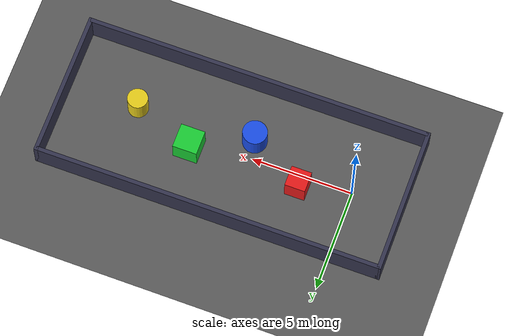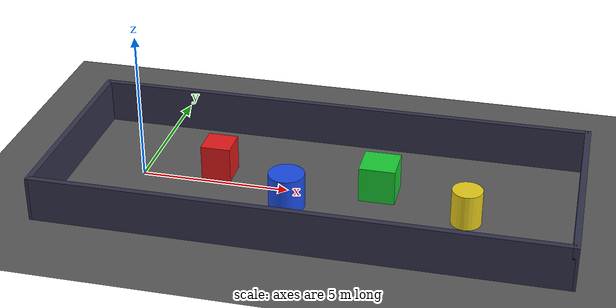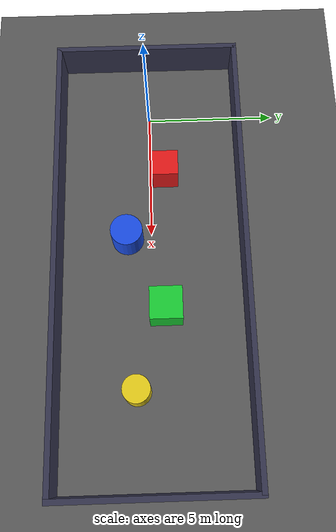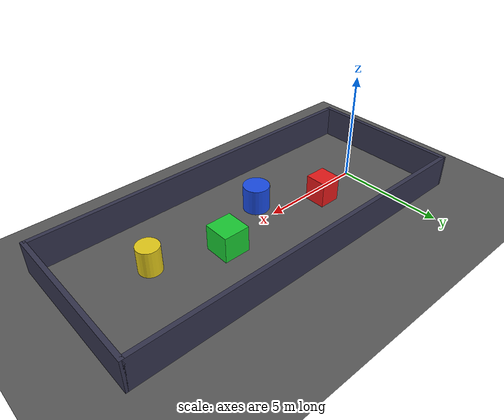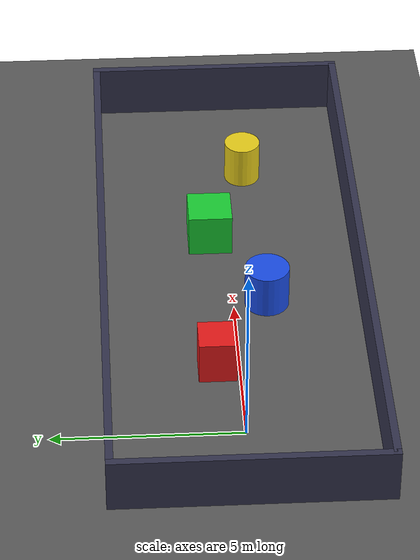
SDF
<?xml version="1.0" ?>
<sdf version="1.6">
  <world name="obstacle_course">
    <!-- Physics parameters -->
    <physics name="1ms" type="ignored">
      <max_step_size>0.001</max_step_size>
      <real_time_factor>1.0</real_time_factor>
    </physics>

    <!-- Essential Gazebo Plugins -->
    <plugin filename="gz-sim-physics-system" name="gz::sim::systems::Physics"></plugin>
    <plugin filename="gz-sim-scene-broadcaster-system" name="gz::sim::systems::SceneBroadcaster"></plugin>
    <plugin filename="gz-sim-user-commands-system" name="gz::sim::systems::UserCommands"></plugin>
    <plugin filename="gz-sim-sensors-system" name="gz::sim::systems::Sensors">
      <render_engine>ogre2</render_engine>
    </plugin>

    <!-- Environment Lighting & Sky -->
    <scene>
      <ambient>0.6 0.6 0.6 1</ambient>
      <background>0.6 0.8 1.0 1</background>
      <shadows>true</shadows>
    </scene>

    <light type="directional" name="sun">
      <cast_shadows>true</cast_shadows>
      <pose>0 0 15 0 0 0</pose>
      <diffuse>0.9 0.9 0.9 1</diffuse>
      <specular>0.3 0.3 0.3 1</specular>
      <direction>-0.5 0.2 -0.8</direction>
    </light>

    <!-- Ground Plane -->
    <model name="ground_plane">
      <static>true</static>
      <link name="link">
        <collision name="collision">
          <geometry>
            <plane>
              <normal>0 0 1</normal>
              <size>100 100</size>
            </plane>
          </geometry>
        </collision>
        <visual name="visual">
          <geometry>
            <plane>
              <normal>0 0 1</normal>
              <size>100 100</size>
            </plane>
          </geometry>
          <material>
            <ambient>0.35 0.35 0.35 1</ambient>
            <diffuse>0.35 0.35 0.35 1</diffuse>
            <specular>0.1 0.1 0.1 1</specular>
          </material>
        </visual>
      </link>
    </model>

    <!-- ==================== ARENA BOUNDARY WALLS ==================== -->
    <model name="north_wall">
      <static>true</static>
      <pose>6.0 3.5 0.75 0 0 0</pose>
      <link name="link">
        <collision name="col"><geometry><box><size>17.0 0.2 1.5</size></box></geometry></collision>
        <visual name="vis">
          <geometry><box><size>17.0 0.2 1.5</size></box></geometry>
          <material><ambient>0.2 0.2 0.3 1</ambient><diffuse>0.2 0.2 0.3 1</diffuse></material>
        </visual>
      </link>
    </model>

    <model name="south_wall">
      <static>true</static>
      <pose>6.0 -3.5 0.75 0 0 0</pose>
      <link name="link">
        <collision name="col"><geometry><box><size>17.0 0.2 1.5</size></box></geometry></collision>
        <visual name="vis">
          <geometry><box><size>17.0 0.2 1.5</size></box></geometry>
          <material><ambient>0.2 0.2 0.3 1</ambient><diffuse>0.2 0.2 0.3 1</diffuse></material>
        </visual>
      </link>
    </model>

    <model name="east_wall">
      <static>true</static>
      <pose>14.5 0.0 0.75 0 0 0</pose>
      <link name="link">
        <collision name="col"><geometry><box><size>0.2 7.2 1.5</size></box></geometry></collision>
        <visual name="vis">
          <geometry><box><size>0.2 7.2 1.5</size></box></geometry>
          <material><ambient>0.2 0.2 0.3 1</ambient><diffuse>0.2 0.2 0.3 1</diffuse></material>
        </visual>
      </link>
    </model>

    <model name="west_wall">
      <static>true</static>
      <pose>-2.5 0.0 0.75 0 0 0</pose>
      <link name="link">
        <collision name="col"><geometry><box><size>0.2 7.2 1.5</size></box></geometry></collision>
        <visual name="vis">
          <geometry><box><size>0.2 7.2 1.5</size></box></geometry>
          <material><ambient>0.2 0.2 0.3 1</ambient><diffuse>0.2 0.2 0.3 1</diffuse></material>
        </visual>
      </link>
    </model>

    <!-- ==================== DEMO OBSTACLES ==================== -->
    <!-- Obstacle 1: Red Box on the Left (forces robot to steer right) -->
    <model name="obstacle_red_box">
      <static>true</static>
      <pose>2.5 0.6 0.6 0 0 0</pose>
      <link name="link">
        <collision name="col"><geometry><box><size>1.0 1.0 1.2</size></box></geometry></collision>
        <visual name="vis">
          <geometry><box><size>1.0 1.0 1.2</size></box></geometry>
          <material>
            <ambient>0.9 0.1 0.1 1</ambient>
            <diffuse>0.9 0.1 0.1 1</diffuse>
            <specular>0.5 0.5 0.5 1</specular>
          </material>
        </visual>
      </link>
    </model>

    <!-- Obstacle 2: Blue Cylinder on the Right (forces robot to steer left) -->
    <model name="obstacle_blue_cylinder">
      <static>true</static>
      <pose>5.2 -0.9 0.6 0 0 0</pose>
      <link name="link">
        <collision name="col"><geometry><cylinder><radius>0.6</radius><length>1.2</length></cylinder></geometry></collision>
        <visual name="vis">
          <geometry><cylinder><radius>0.6</radius><length>1.2</length></cylinder></geometry>
          <material>
            <ambient>0.1 0.3 0.9 1</ambient>
            <diffuse>0.1 0.3 0.9 1</diffuse>
            <specular>0.5 0.5 0.5 1</specular>
          </material>
        </visual>
      </link>
    </model>

    <!-- Obstacle 3: Green Box in Center-Left -->
    <model name="obstacle_green_box">
      <static>true</static>
      <pose>8.0 0.5 0.6 0 0 0</pose>
      <link name="link">
        <collision name="col"><geometry><box><size>1.2 1.2 1.2</size></box></geometry></collision>
        <visual name="vis">
          <geometry><box><size>1.2 1.2 1.2</size></box></geometry>
          <material>
            <ambient>0.1 0.8 0.2 1</ambient>
            <diffuse>0.1 0.8 0.2 1</diffuse>
            <specular>0.5 0.5 0.5 1</specular>
          </material>
        </visual>
      </link>
    </model>

    <!-- Obstacle 4: Yellow Pillar on the Right -->
    <model name="obstacle_yellow_pillar">
      <static>true</static>
      <pose>11.0 -0.6 0.6 0 0 0</pose>
      <link name="link">
        <collision name="col"><geometry><cylinder><radius>0.5</radius><length>1.2</length></cylinder></geometry></collision>
        <visual name="vis">
          <geometry><cylinder><radius>0.5</radius><length>1.2</length></cylinder></geometry>
          <material>
            <ambient>0.9 0.8 0.1 1</ambient>
            <diffuse>0.9 0.8 0.1 1</diffuse>
            <specular>0.5 0.5 0.5 1</specular>
          </material>
        </visual>
      </link>
    </model>

  </world>
</sdf>
